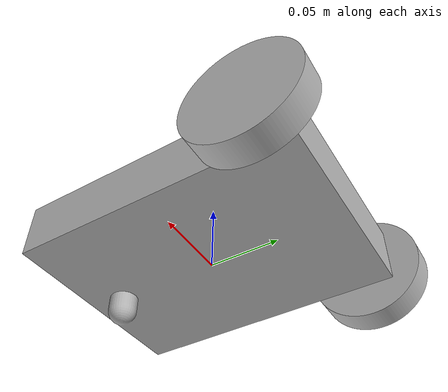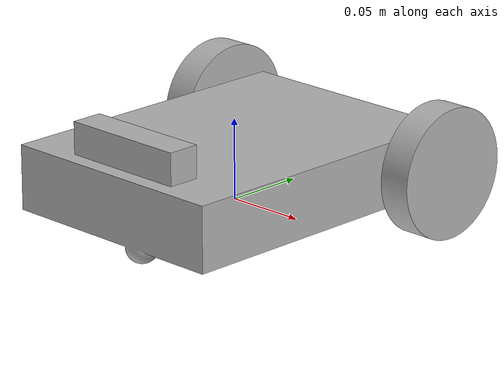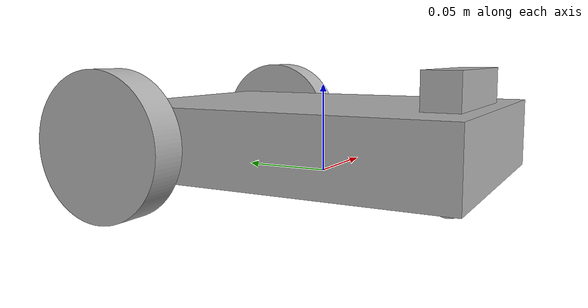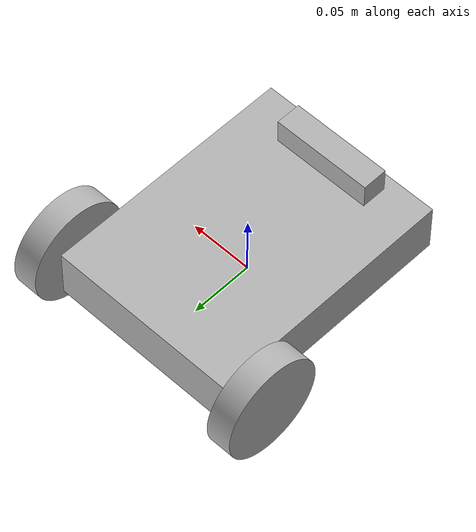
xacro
<?xml version="1.0" ?>
<robot name="demo" xmlns:xacro="http://www.ros.org/wiki/xacro">

<xacro:include filename="$(find demo_description)/urdf/materials.xacro" />
<xacro:include filename="$(find demo_description)/urdf/demo.trans" />
<xacro:include filename="$(find demo_description)/urdf/demo.gazebo" />
<link name="base_link">
  <inertial>
    <origin xyz="5.444805393558335e-15 -0.00027351689818956874 0.01987626616510473" rpy="0 0 0"/>
    <mass value="1.2783826690745435"/>
    <inertia ixx="0.004451" iyy="0.002564" izz="0.006667" ixy="0.0" iyz="-1.2e-05" ixz="0.0"/>
  </inertial>
  <visual>
    <origin xyz="0 0 0" rpy="0 0 0"/>
    <geometry>
      <mesh filename="file://$(find demo_description)/meshes/base_link.stl" scale="0.001 0.001 0.001"/>
    </geometry>
    <material name="silver"/>
  </visual>
  <collision>
    <origin xyz="0 0 0" rpy="0 0 0"/>
    <geometry>
      <mesh filename="file://$(find demo_description)/meshes/base_link.stl" scale="0.001 0.001 0.001"/>
    </geometry>
  </collision>
</link>

<link name="right_wheel_1">
  <inertial>
    <origin xyz="-0.009999999999999995 0.0 0.0" rpy="0 0 0"/>
    <mass value="0.09349379737083224"/>
    <inertia ixx="7.5e-05" iyy="4.1e-05" izz="4.1e-05" ixy="-0.0" iyz="0.0" ixz="0.0"/>
  </inertial>
  <visual>
    <origin xyz="0.08 -0.08 -0.02" rpy="0 0 0"/>
    <geometry>
      <mesh filename="file://$(find demo_description)/meshes/right_wheel_1.stl" scale="0.001 0.001 0.001"/>
    </geometry>
    <material name="silver"/>
  </visual>
  <collision>
    <origin xyz="0.08 -0.08 -0.02" rpy="0 0 0"/>
    <geometry>
      <mesh filename="file://$(find demo_description)/meshes/right_wheel_1.stl" scale="0.001 0.001 0.001"/>
    </geometry>
  </collision>
</link>

<link name="left_wheel_1">
  <inertial>
    <origin xyz="0.009999999999999995 0.0 0.0" rpy="0 0 0"/>
    <mass value="0.09349379737083224"/>
    <inertia ixx="7.5e-05" iyy="4.1e-05" izz="4.1e-05" ixy="0.0" iyz="0.0" ixz="0.0"/>
  </inertial>
  <visual>
    <origin xyz="-0.08 -0.08 -0.02" rpy="0 0 0"/>
    <geometry>
      <mesh filename="file://$(find demo_description)/meshes/left_wheel_1.stl" scale="0.001 0.001 0.001"/>
    </geometry>
    <material name="silver"/>
  </visual>
  <collision>
    <origin xyz="-0.08 -0.08 -0.02" rpy="0 0 0"/>
    <geometry>
      <mesh filename="file://$(find demo_description)/meshes/left_wheel_1.stl" scale="0.001 0.001 0.001"/>
    </geometry>
  </collision>
</link>

<link name="camera_1">
  <inertial>
    <origin xyz="0.0 0.020000000000000004 0.010000000000000002" rpy="0 0 0"/>
    <mass value="0.03392"/>
    <inertia ixx="2e-06" iyy="1.9e-05" izz="1.9e-05" ixy="0.0" iyz="0.0" ixz="0.0"/>
  </inertial>
  <visual>
    <origin xyz="-0.0 0.1 -0.04" rpy="0 0 0"/>
    <geometry>
      <mesh filename="file://$(find demo_description)/meshes/camera_1.stl" scale="0.001 0.001 0.001"/>
    </geometry>
    <material name="silver"/>
  </visual>
  <collision>
    <origin xyz="-0.0 0.1 -0.04" rpy="0 0 0"/>
    <geometry>
      <mesh filename="file://$(find demo_description)/meshes/camera_1.stl" scale="0.001 0.001 0.001"/>
    </geometry>
  </collision>
</link>

<joint name="Revolute 1" type="continuous">
  <origin xyz="-0.08 0.08 0.02" rpy="0 0 0"/>
  <parent link="base_link"/>
  <child link="right_wheel_1"/>
  <axis xyz="1.0 0.0 0.0"/>
</joint>

<joint name="Revolute 2" type="continuous">
  <origin xyz="0.08 0.08 0.02" rpy="0 0 0"/>
  <parent link="base_link"/>
  <child link="left_wheel_1"/>
  <axis xyz="1.0 0.0 0.0"/>
</joint>

<joint name="Rigid 3" type="fixed">
  <origin xyz="0.0 -0.1 0.04" rpy="0 0 0"/>
  <parent link="base_link"/>
  <child link="camera_1"/>
</joint>

</robot>

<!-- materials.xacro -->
<robot name="demo" xmlns:xacro="http://www.ros.org/wiki/xacro" >

<material name="silver">
  <color rgba="0.700 0.700 0.700 1.000"/>
</material>

</robot>

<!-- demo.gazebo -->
<robot name="demo" xmlns:xacro="http://www.ros.org/wiki/xacro" >

<xacro:property name="body_color" value="Gazebo/Silver" />

<gazebo>
  <plugin name="control" filename="libgazebo_ros_control.so"/>
</gazebo>
<gazebo reference="base_link">
  <material>${body_color}</material>
  <mu1>0.2</mu1>
  <mu2>0.2</mu2>
  <self_collide>true</self_collide>
  <gravity>true</gravity>
</gazebo>

<gazebo reference="right_wheel_1">
  <material>${body_color}</material>
  <mu1>0.2</mu1>
  <mu2>0.2</mu2>
  <self_collide>true</self_collide>
</gazebo>

<gazebo reference="left_wheel_1">
  <material>${body_color}</material>
  <mu1>0.2</mu1>
  <mu2>0.2</mu2>
  <self_collide>true</self_collide>
</gazebo>

<gazebo reference="camera_1">
  <material>${body_color}</material>
  <mu1>0.2</mu1>
  <mu2>0.2</mu2>
  <self_collide>true</self_collide>
</gazebo>

</robot>
